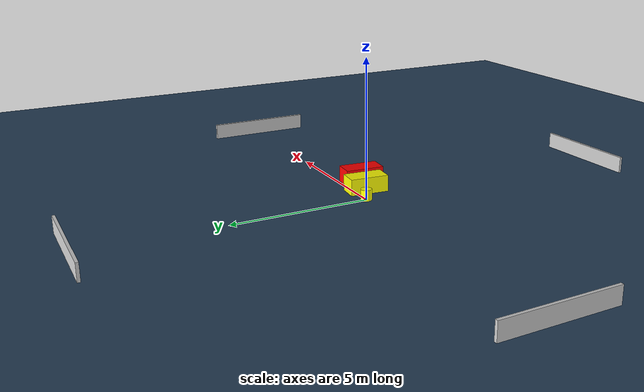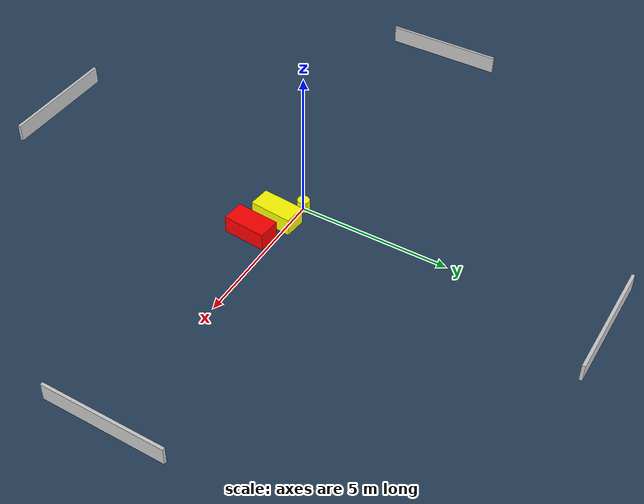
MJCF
<?xml version="1.0" ?>
<mujoco model="generated_environment">
  <option timestep="0.01" integrator="RK4" cone="elliptic"/>
  <default>
    <geom density="1"/>
  </default>
  <asset>
    <texture builtin="gradient" height="3072" name="skybox" rgb1="0.3 0.5 0.7" rgb2="0 0 0" type="skybox" width="512"/>
    <texture builtin="checker" height="300" name="groundplane" rgb1="0.2 0.3 0.4" rgb2="0.1 0.2 0.3" type="2d" width="300"/>
    <material name="groundplane" reflectance="0.2" texrepeat="5 5" texture="groundplane"/>
  </asset>
  <worldbody>
    <light dir="0 0 -1" directional="true" pos="0 0 1.5"/>
    <geom condim="3" friction="0.5 0.005 0.001" material="groundplane" name="floor" pos="0 0 0" size="0 0 0.05" type="plane"/>
    <body name="walls">
      <geom name="wall_1" condim="4" pos="-10.0 0.0 0.3" rgba="0.800000011920929 0.800000011920929 0.800000011920929 1.0" size="0.05 2.0 0.3" type="box"/>
      <geom name="wall_2" condim="4" pos="10.0 0.0 0.3" rgba="0.800000011920929 0.800000011920929 0.800000011920929 1.0" size="0.05 2.0 0.3" type="box"/>
      <geom name="wall_3" condim="4" pos="0.0 -10.0 0.3" rgba="0.800000011920929 0.800000011920929 0.800000011920929 1.0" size="2.0 0.05 0.3" type="box"/>
      <geom name="wall_4" condim="4" pos="0.0 10.0 0.3" rgba="0.800000011920929 0.800000011920929 0.800000011920929 1.0" size="2.0 0.05 0.3" type="box"/>
    </body>
    <body name="robot">
      <joint name="joint_x" type="slide" pos="0 0 0" axis="1 0 0"/>
      <joint name="joint_y" type="slide" pos="0 0 0" axis="0 1 0"/>
      <geom name="robot" type="cylinder" pos="0.0 0.0 0.2" size="0.2 0.2 0.0" mass="5.0" friction="1.0 0.005 0.0001" condim="4" rgba="1.0 1.0 0.0 1.0"/>
    </body>
    <body name="obstacle_1_movable">
      <geom name="obstacle_1_movable" condim="4" pos="0.8479376741935288 -0.4526909912823002 0.3" euler="0 0 174.85878273259598" friction="0.0 0.005 0.001" rgba="1.0 1.0 0.0 1.0" size="0.3602603137611967 0.7063247633232521 0.3" type="box" mass="0.1"/>
      <joint type="free"/>
    </body>
    <body name="obstacle_2_static">
      <geom name="obstacle_2_static" condim="4" pos="1.8150162987555858 -0.7887254177700762 0.3" euler="0 0 355.1661095298215" friction="0.0 0.005 0.001" rgba="1.0 0.0 0.0 1.0" size="0.36848754228628566 0.7135044757936246 0.3" type="box"/>
    </body>
  </worldbody>
  <actuator>
    <motor name="actuator_x" joint="joint_x" gear="1" ctrlrange="-1 1"/>
    <motor name="actuator_y" joint="joint_y" gear="1" ctrlrange="-1 1"/>
  </actuator>
</mujoco>
